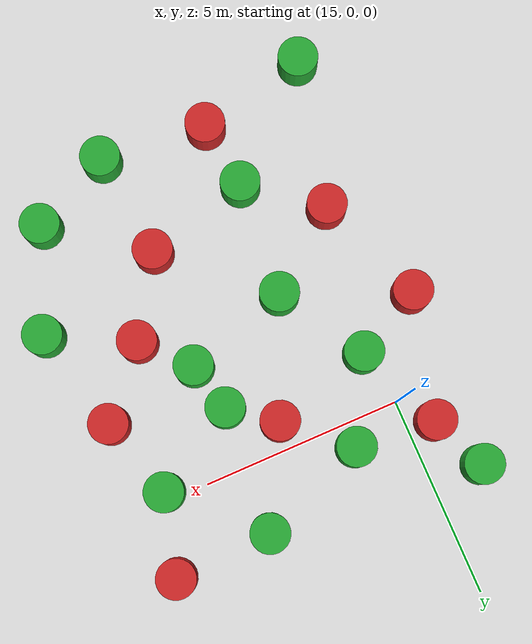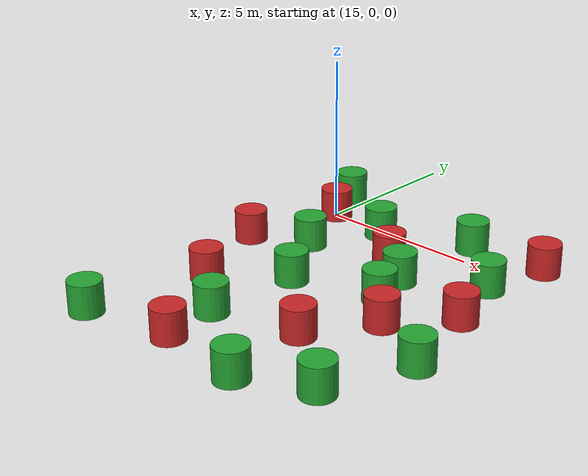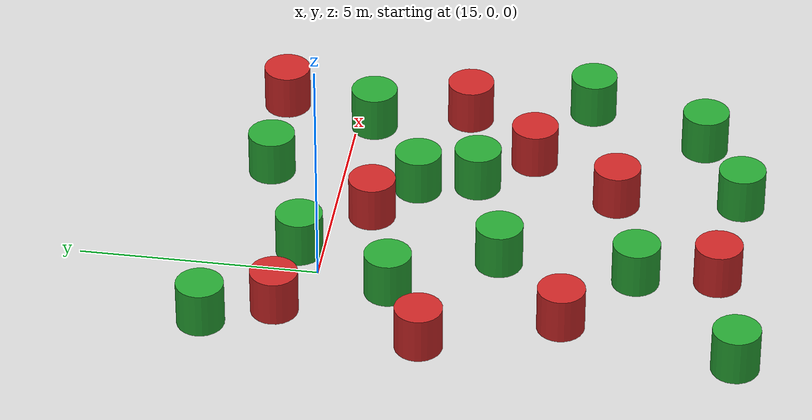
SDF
<sdf version="1.7">
 <model name="Astar_Dij_test.world">
  <link name="link_0_clone_2">
   <inertial>
    <mass>20</mass>
    <inertia><ixx>2.91667</ixx><ixy>0</ixy><ixz>0</ixz><iyy>2.91667</iyy><iyz>0</iyz><izz>2.5</izz></inertia>
   </inertial>
   <pose>13.5266 -2.31251 0 0 -0 0</pose>
   <visual name="visual">
    <geometry><cylinder><radius>0.5</radius><length>1</length></cylinder></geometry>
    <material>
     <lighting>1</lighting>
     <script><uri>file://media/materials/scripts/gazebo.material</uri><name>Gazebo/Red</name></script>
     <shader type="pixel"><normal_map>__default__</normal_map></shader>
     <ambient>1 0 0 1</ambient>
     <diffuse>1 0 0 1</diffuse>
     <specular>0.1 0.1 0.1 1</specular>
     <emissive>0 0 0 1</emissive>
    </material>
   </visual>
   <collision name="collision">
    <geometry><cylinder><radius>0.5</radius><length>1</length></cylinder></geometry>
    <surface>
     <friction>
      <ode><mu>1</mu><mu2>1</mu2><fdir1>0 0 0</fdir1><slip1>0</slip1><slip2>0</slip2></ode>
      <torsional>
       <coefficient>1</coefficient>
       <patch_radius>0</patch_radius>
       <surface_radius>0</surface_radius>
       <use_patch_radius>1</use_patch_radius>
       <ode><slip>0</slip></ode>
      </torsional>
     </friction>
     <bounce><restitution_coefficient>0</restitution_coefficient><threshold>1e+06</threshold></bounce>
     <contact>
      <collide_without_contact>0</collide_without_contact>
      <collide_without_contact_bitmask>1</collide_without_contact_bitmask>
      <collide_bitmask>1</collide_bitmask>
      <ode>
       <soft_cfm>0</soft_cfm>
       <soft_erp>0.2</soft_erp>
       <kp>1e+13</kp>
       <kd>1</kd>
       <max_vel>0.01</max_vel>
       <min_depth>0</min_depth>
      </ode>
      <bullet>
       <split_impulse>1</split_impulse>
       <split_impulse_penetration_threshold>-0.01</split_impulse_penetration_threshold>
       <soft_cfm>0</soft_cfm>
       <soft_erp>0.2</soft_erp>
       <kp>1e+13</kp>
       <kd>1</kd>
      </bullet>
     </contact>
    </surface>
   </collision>
  </link>
  <link name="link_0_clone_25">
   <inertial>
    <mass>20</mass>
    <inertia><ixx>2.91667</ixx><ixy>0</ixy><ixz>0</ixz><iyy>2.91667</iyy><iyz>0</iyz><izz>2.5</izz></inertia>
   </inertial>
   <pose>18.9473 -5.77924 0 0 -0 0</pose>
   <visual name="visual">
    <geometry><cylinder><radius>0.5</radius><length>1</length></cylinder></geometry>
    <material>
     <lighting>1</lighting>
     <script><uri>file://media/materials/scripts/gazebo.material</uri><name>Gazebo/Red</name></script>
     <shader type="pixel"><normal_map>__default__</normal_map></shader>
     <ambient>1 0 0 1</ambient>
     <diffuse>1 0 0 1</diffuse>
     <specular>0.1 0.1 0.1 1</specular>
     <emissive>0 0 0 1</emissive>
    </material>
   </visual>
   <collision name="collision">
    <geometry><cylinder><radius>0.5</radius><length>1</length></cylinder></geometry>
    <surface>
     <friction>
      <ode><mu>1</mu><mu2>1</mu2><fdir1>0 0 0</fdir1><slip1>0</slip1><slip2>0</slip2></ode>
      <torsional>
       <coefficient>1</coefficient>
       <patch_radius>0</patch_radius>
       <surface_radius>0</surface_radius>
       <use_patch_radius>1</use_patch_radius>
       <ode><slip>0</slip></ode>
      </torsional>
     </friction>
     <bounce><restitution_coefficient>0</restitution_coefficient><threshold>1e+06</threshold></bounce>
     <contact>
      <collide_without_contact>0</collide_without_contact>
      <collide_without_contact_bitmask>1</collide_without_contact_bitmask>
      <collide_bitmask>1</collide_bitmask>
      <ode>
       <soft_cfm>0</soft_cfm>
       <soft_erp>0.2</soft_erp>
       <kp>1e+13</kp>
       <kd>1</kd>
       <max_vel>0.01</max_vel>
       <min_depth>0</min_depth>
      </ode>
      <bullet>
       <split_impulse>1</split_impulse>
       <split_impulse_penetration_threshold>-0.01</split_impulse_penetration_threshold>
       <soft_cfm>0</soft_cfm>
       <soft_erp>0.2</soft_erp>
       <kp>1e+13</kp>
       <kd>1</kd>
      </bullet>
     </contact>
    </surface>
   </collision>
  </link>
  <link name="link_0_clone_25_clone">
   <inertial>
    <mass>20</mass>
    <inertia><ixx>2.91667</ixx><ixy>0</ixy><ixz>0</ixz><iyy>2.91667</iyy><iyz>0</iyz><izz>2.5</izz></inertia>
   </inertial>
   <pose>20.1782 -3.87581 0 0 -0 0</pose>
   <visual name="visual">
    <geometry><cylinder><radius>0.5</radius><length>1</length></cylinder></geometry>
    <material>
     <lighting>1</lighting>
     <script><uri>file://media/materials/scripts/gazebo.material</uri><name>Gazebo/Red</name></script>
     <shader type="pixel"><normal_map>__default__</normal_map></shader>
     <ambient>1 0 0 1</ambient>
     <diffuse>1 0 0 1</diffuse>
     <specular>0.1 0.1 0.1 1</specular>
     <emissive>0 0 0 1</emissive>
    </material>
   </visual>
   <collision name="collision">
    <geometry><cylinder><radius>0.5</radius><length>1</length></cylinder></geometry>
    <surface>
     <friction>
      <ode><mu>1</mu><mu2>1</mu2><fdir1>0 0 0</fdir1><slip1>0</slip1><slip2>0</slip2></ode>
      <torsional>
       <coefficient>1</coefficient>
       <patch_radius>0</patch_radius>
       <surface_radius>0</surface_radius>
       <use_patch_radius>1</use_patch_radius>
       <ode><slip>0</slip></ode>
      </torsional>
     </friction>
     <bounce><restitution_coefficient>0</restitution_coefficient><threshold>1e+06</threshold></bounce>
     <contact>
      <collide_without_contact>0</collide_without_contact>
      <collide_without_contact_bitmask>1</collide_without_contact_bitmask>
      <collide_bitmask>1</collide_bitmask>
      <ode>
       <soft_cfm>0</soft_cfm>
       <soft_erp>0.2</soft_erp>
       <kp>1e+13</kp>
       <kd>1</kd>
       <max_vel>0.01</max_vel>
       <min_depth>0</min_depth>
      </ode>
      <bullet>
       <split_impulse>1</split_impulse>
       <split_impulse_penetration_threshold>-0.01</split_impulse_penetration_threshold>
       <soft_cfm>0</soft_cfm>
       <soft_erp>0.2</soft_erp>
       <kp>1e+13</kp>
       <kd>1</kd>
      </bullet>
     </contact>
    </surface>
   </collision>
  </link>
  <link name="link_0_clone_25_clone_0">
   <inertial>
    <mass>20</mass>
    <inertia><ixx>2.91667</ixx><ixy>0</ixy><ixz>0</ixz><iyy>2.91667</iyy><iyz>0</iyz><izz>2.5</izz></inertia>
   </inertial>
   <pose>17.7704 -0.699835 0 0 -0 0</pose>
   <visual name="visual">
    <geometry><cylinder><radius>0.5</radius><length>1</length></cylinder></geometry>
    <material>
     <lighting>1</lighting>
     <script><uri>file://media/materials/scripts/gazebo.material</uri><name>Gazebo/Red</name></script>
     <shader type="pixel"><normal_map>__default__</normal_map></shader>
     <ambient>1 0 0 1</ambient>
     <diffuse>1 0 0 1</diffuse>
     <specular>0.1 0.1 0.1 1</specular>
     <emissive>0 0 0 1</emissive>
    </material>
   </visual>
   <collision name="collision">
    <geometry><cylinder><radius>0.5</radius><length>1</length></cylinder></geometry>
    <surface>
     <friction>
      <ode><mu>1</mu><mu2>1</mu2><fdir1>0 0 0</fdir1><slip1>0</slip1><slip2>0</slip2></ode>
      <torsional>
       <coefficient>1</coefficient>
       <patch_radius>0</patch_radius>
       <surface_radius>0</surface_radius>
       <use_patch_radius>1</use_patch_radius>
       <ode><slip>0</slip></ode>
      </torsional>
     </friction>
     <bounce><restitution_coefficient>0</restitution_coefficient><threshold>1e+06</threshold></bounce>
     <contact>
      <collide_without_contact>0</collide_without_contact>
      <collide_without_contact_bitmask>1</collide_without_contact_bitmask>
      <collide_bitmask>1</collide_bitmask>
      <ode>
       <soft_cfm>0</soft_cfm>
       <soft_erp>0.2</soft_erp>
       <kp>1e+13</kp>
       <kd>1</kd>
       <max_vel>0.01</max_vel>
       <min_depth>0</min_depth>
      </ode>
      <bullet>
       <split_impulse>1</split_impulse>
       <split_impulse_penetration_threshold>-0.01</split_impulse_penetration_threshold>
       <soft_cfm>0</soft_cfm>
       <soft_erp>0.2</soft_erp>
       <kp>1e+13</kp>
       <kd>1</kd>
      </bullet>
     </contact>
    </surface>
   </collision>
  </link>
  <link name="link_0_clone_25_clone_1">
   <inertial>
    <mass>20</mass>
    <inertia><ixx>2.91667</ixx><ixy>0</ixy><ixz>0</ixz><iyy>2.91667</iyy><iyz>0</iyz><izz>2.5</izz></inertia>
   </inertial>
   <pose>21.603 -2.29267 0 0 -0 0</pose>
   <visual name="visual">
    <geometry><cylinder><radius>0.5</radius><length>1</length></cylinder></geometry>
    <material>
     <lighting>1</lighting>
     <script><uri>file://media/materials/scripts/gazebo.material</uri><name>Gazebo/Red</name></script>
     <shader type="pixel"><normal_map>__default__</normal_map></shader>
     <ambient>1 0 0 1</ambient>
     <diffuse>1 0 0 1</diffuse>
     <specular>0.1 0.1 0.1 1</specular>
     <emissive>0 0 0 1</emissive>
    </material>
   </visual>
   <collision name="collision">
    <geometry><cylinder><radius>0.5</radius><length>1</length></cylinder></geometry>
    <surface>
     <friction>
      <ode><mu>1</mu><mu2>1</mu2><fdir1>0 0 0</fdir1><slip1>0</slip1><slip2>0</slip2></ode>
      <torsional>
       <coefficient>1</coefficient>
       <patch_radius>0</patch_radius>
       <surface_radius>0</surface_radius>
       <use_patch_radius>1</use_patch_radius>
       <ode><slip>0</slip></ode>
      </torsional>
     </friction>
     <bounce><restitution_coefficient>0</restitution_coefficient><threshold>1e+06</threshold></bounce>
     <contact>
      <collide_without_contact>0</collide_without_contact>
      <collide_without_contact_bitmask>1</collide_without_contact_bitmask>
      <collide_bitmask>1</collide_bitmask>
      <ode>
       <soft_cfm>0</soft_cfm>
       <soft_erp>0.2</soft_erp>
       <kp>1e+13</kp>
       <kd>1</kd>
       <max_vel>0.01</max_vel>
       <min_depth>0</min_depth>
      </ode>
      <bullet>
       <split_impulse>1</split_impulse>
       <split_impulse_penetration_threshold>-0.01</split_impulse_penetration_threshold>
       <soft_cfm>0</soft_cfm>
       <soft_erp>0.2</soft_erp>
       <kp>1e+13</kp>
       <kd>1</kd>
      </bullet>
     </contact>
    </surface>
   </collision>
  </link>
  <link name="link_0_clone_25_clone_2">
   <inertial>
    <mass>20</mass>
    <inertia><ixx>2.91667</ixx><ixy>0</ixy><ixz>0</ixz><iyy>2.91667</iyy><iyz>0</iyz><izz>2.5</izz></inertia>
   </inertial>
   <pose>21.5702 1.76746 0 0 -0 0</pose>
   <visual name="visual">
    <geometry><cylinder><radius>0.5</radius><length>1</length></cylinder></geometry>
    <material>
     <lighting>1</lighting>
     <script><uri>file://media/materials/scripts/gazebo.material</uri><name>Gazebo/Red</name></script>
     <shader type="pixel"><normal_map>__default__</normal_map></shader>
     <ambient>1 0 0 1</ambient>
     <diffuse>1 0 0 1</diffuse>
     <specular>0.1 0.1 0.1 1</specular>
     <emissive>0 0 0 1</emissive>
    </material>
   </visual>
   <collision name="collision">
    <geometry><cylinder><radius>0.5</radius><length>1</length></cylinder></geometry>
    <surface>
     <friction>
      <ode><mu>1</mu><mu2>1</mu2><fdir1>0 0 0</fdir1><slip1>0</slip1><slip2>0</slip2></ode>
      <torsional>
       <coefficient>1</coefficient>
       <patch_radius>0</patch_radius>
       <surface_radius>0</surface_radius>
       <use_patch_radius>1</use_patch_radius>
       <ode><slip>0</slip></ode>
      </torsional>
     </friction>
     <bounce><restitution_coefficient>0</restitution_coefficient><threshold>1e+06</threshold></bounce>
     <contact>
      <collide_without_contact>0</collide_without_contact>
      <collide_without_contact_bitmask>1</collide_without_contact_bitmask>
      <collide_bitmask>1</collide_bitmask>
      <ode>
       <soft_cfm>0</soft_cfm>
       <soft_erp>0.2</soft_erp>
       <kp>1e+13</kp>
       <kd>1</kd>
       <max_vel>0.01</max_vel>
       <min_depth>0</min_depth>
      </ode>
      <bullet>
       <split_impulse>1</split_impulse>
       <split_impulse_penetration_threshold>-0.01</split_impulse_penetration_threshold>
       <soft_cfm>0</soft_cfm>
       <soft_erp>0.2</soft_erp>
       <kp>1e+13</kp>
       <kd>1</kd>
      </bullet>
     </contact>
    </surface>
   </collision>
  </link>
  <link name="link_0_clone_3">
   <inertial>
    <mass>20</mass>
    <inertia><ixx>2.91667</ixx><ixy>0</ixy><ixz>0</ixz><iyy>2.91667</iyy><iyz>0</iyz><izz>2.5</izz></inertia>
   </inertial>
   <pose>14.2917 0.794786 0 0 -0 0</pose>
   <visual name="visual">
    <geometry><cylinder><radius>0.5</radius><length>1</length></cylinder></geometry>
    <material>
     <lighting>1</lighting>
     <script><uri>file://media/materials/scripts/gazebo.material</uri><name>Gazebo/Red</name></script>
     <shader type="pixel"><normal_map>__default__</normal_map></shader>
     <ambient>1 0 0 1</ambient>
     <diffuse>1 0 0 1</diffuse>
     <specular>0.1 0.1 0.1 1</specular>
     <emissive>0 0 0 1</emissive>
    </material>
   </visual>
   <collision name="collision">
    <geometry><cylinder><radius>0.5</radius><length>1</length></cylinder></geometry>
    <surface>
     <friction>
      <ode><mu>1</mu><mu2>1</mu2><fdir1>0 0 0</fdir1><slip1>0</slip1><slip2>0</slip2></ode>
      <torsional>
       <coefficient>1</coefficient>
       <patch_radius>0</patch_radius>
       <surface_radius>0</surface_radius>
       <use_patch_radius>1</use_patch_radius>
       <ode><slip>0</slip></ode>
      </torsional>
     </friction>
     <bounce><restitution_coefficient>0</restitution_coefficient><threshold>1e+06</threshold></bounce>
     <contact>
      <collide_without_contact>0</collide_without_contact>
      <collide_without_contact_bitmask>1</collide_without_contact_bitmask>
      <collide_bitmask>1</collide_bitmask>
      <ode>
       <soft_cfm>0</soft_cfm>
       <soft_erp>0.2</soft_erp>
       <kp>1e+13</kp>
       <kd>1</kd>
       <max_vel>0.01</max_vel>
       <min_depth>0</min_depth>
      </ode>
      <bullet>
       <split_impulse>1</split_impulse>
       <split_impulse_penetration_threshold>-0.01</split_impulse_penetration_threshold>
       <soft_cfm>0</soft_cfm>
       <soft_erp>0.2</soft_erp>
       <kp>1e+13</kp>
       <kd>1</kd>
      </bullet>
     </contact>
    </surface>
   </collision>
  </link>
  <link name="link_0_clone_8">
   <inertial>
    <mass>20</mass>
    <inertia><ixx>2.91667</ixx><ixy>0</ixy><ixz>0</ixz><iyy>2.91667</iyy><iyz>0</iyz><izz>2.5</izz></inertia>
   </inertial>
   <pose>16.5267 -8.14797 0 0 -0 0</pose>
   <visual name="visual">
    <geometry><cylinder><radius>0.5</radius><length>1</length></cylinder></geometry>
    <material>
     <lighting>1</lighting>
     <script><uri>file://media/materials/scripts/gazebo.material</uri><name>Gazebo/Red</name></script>
     <shader type="pixel"><normal_map>__default__</normal_map></shader>
     <ambient>1 0 0 1</ambient>
     <diffuse>1 0 0 1</diffuse>
     <specular>0.1 0.1 0.1 1</specular>
     <emissive>0 0 0 1</emissive>
    </material>
   </visual>
   <collision name="collision">
    <geometry><cylinder><radius>0.5</radius><length>1</length></cylinder></geometry>
    <surface>
     <friction>
      <ode><mu>1</mu><mu2>1</mu2><fdir1>0 0 0</fdir1><slip1>0</slip1><slip2>0</slip2></ode>
      <torsional>
       <coefficient>1</coefficient>
       <patch_radius>0</patch_radius>
       <surface_radius>0</surface_radius>
       <use_patch_radius>1</use_patch_radius>
       <ode><slip>0</slip></ode>
      </torsional>
     </friction>
     <bounce><restitution_coefficient>0</restitution_coefficient><threshold>1e+06</threshold></bounce>
     <contact>
      <collide_without_contact>0</collide_without_contact>
      <collide_without_contact_bitmask>1</collide_without_contact_bitmask>
      <collide_bitmask>1</collide_bitmask>
      <ode>
       <soft_cfm>0</soft_cfm>
       <soft_erp>0.2</soft_erp>
       <kp>1e+13</kp>
       <kd>1</kd>
       <max_vel>0.01</max_vel>
       <min_depth>0</min_depth>
      </ode>
      <bullet>
       <split_impulse>1</split_impulse>
       <split_impulse_penetration_threshold>-0.01</split_impulse_penetration_threshold>
       <soft_cfm>0</soft_cfm>
       <soft_erp>0.2</soft_erp>
       <kp>1e+13</kp>
       <kd>1</kd>
      </bullet>
     </contact>
    </surface>
   </collision>
  </link>
  <link name="link_0_clone_9">
   <inertial>
    <mass>20</mass>
    <inertia><ixx>2.91667</ixx><ixy>0</ixy><ixz>0</ixz><iyy>2.91667</iyy><iyz>0</iyz><izz>2.5</izz></inertia>
   </inertial>
   <pose>14.588 -5.0993 0 0 -0 0</pose>
   <visual name="visual">
    <geometry><cylinder><radius>0.5</radius><length>1</length></cylinder></geometry>
    <material>
     <lighting>1</lighting>
     <script><uri>file://media/materials/scripts/gazebo.material</uri><name>Gazebo/Red</name></script>
     <shader type="pixel"><normal_map>__default__</normal_map></shader>
     <ambient>1 0 0 1</ambient>
     <diffuse>1 0 0 1</diffuse>
     <specular>0.1 0.1 0.1 1</specular>
     <emissive>0 0 0 1</emissive>
    </material>
   </visual>
   <collision name="collision">
    <geometry><cylinder><radius>0.5</radius><length>1</length></cylinder></geometry>
    <surface>
     <friction>
      <ode><mu>1</mu><mu2>1</mu2><fdir1>0 0 0</fdir1><slip1>0</slip1><slip2>0</slip2></ode>
      <torsional>
       <coefficient>1</coefficient>
       <patch_radius>0</patch_radius>
       <surface_radius>0</surface_radius>
       <use_patch_radius>1</use_patch_radius>
       <ode><slip>0</slip></ode>
      </torsional>
     </friction>
     <bounce><restitution_coefficient>0</restitution_coefficient><threshold>1e+06</threshold></bounce>
     <contact>
      <collide_without_contact>0</collide_without_contact>
      <collide_without_contact_bitmask>1</collide_without_contact_bitmask>
      <collide_bitmask>1</collide_bitmask>
      <ode>
       <soft_cfm>0</soft_cfm>
       <soft_erp>0.2</soft_erp>
       <kp>1e+13</kp>
       <kd>1</kd>
       <max_vel>0.01</max_vel>
       <min_depth>0</min_depth>
      </ode>
      <bullet>
       <split_impulse>1</split_impulse>
       <split_impulse_penetration_threshold>-0.01</split_impulse_penetration_threshold>
       <soft_cfm>0</soft_cfm>
       <soft_erp>0.2</soft_erp>
       <kp>1e+13</kp>
       <kd>1</kd>
      </bullet>
     </contact>
    </surface>
   </collision>
  </link>
  <link name="link_clone_6">
   <inertial>
    <mass>20</mass>
    <inertia><ixx>2.91667</ixx><ixy>0</ixy><ixz>0</ixz><iyy>2.91667</iyy><iyz>0</iyz><izz>2.5</izz></inertia>
   </inertial>
   <pose>21.0244 -0.249196 0 0 -0 0</pose>
   <visual name="visual">
    <geometry><cylinder><radius>0.5</radius><length>1</length></cylinder></geometry>
    <material>
     <script><name>Gazebo/Green</name><uri>file://media/materials/scripts/gazebo.material</uri></script>
     <shader type="pixel"><normal_map>__default__</normal_map></shader>
     <ambient>0 1 0 1</ambient>
     <diffuse>0 1 0 1</diffuse>
     <specular>0.1 0.1 0.1 1</specular>
     <emissive>0 0 0 1</emissive>
    </material>
   </visual>
   <collision name="collision">
    <geometry><cylinder><radius>0.5</radius><length>1</length></cylinder></geometry>
    <surface>
     <friction>
      <ode><mu>1</mu><mu2>1</mu2><fdir1>0 0 0</fdir1><slip1>0</slip1><slip2>0</slip2></ode>
      <torsional>
       <coefficient>1</coefficient>
       <patch_radius>0</patch_radius>
       <surface_radius>0</surface_radius>
       <use_patch_radius>1</use_patch_radius>
       <ode><slip>0</slip></ode>
      </torsional>
     </friction>
     <bounce><restitution_coefficient>0</restitution_coefficient><threshold>1e+06</threshold></bounce>
     <contact>
      <collide_without_contact>0</collide_without_contact>
      <collide_without_contact_bitmask>1</collide_without_contact_bitmask>
      <collide_bitmask>1</collide_bitmask>
      <ode>
       <soft_cfm>0</soft_cfm>
       <soft_erp>0.2</soft_erp>
       <kp>1e+13</kp>
       <kd>1</kd>
       <max_vel>0.01</max_vel>
       <min_depth>0</min_depth>
      </ode>
      <bullet>
       <split_impulse>1</split_impulse>
       <split_impulse_penetration_threshold>-0.01</split_impulse_penetration_threshold>
       <soft_cfm>0</soft_cfm>
       <soft_erp>0.2</soft_erp>
       <kp>1e+13</kp>
       <kd>1</kd>
      </bullet>
     </contact>
    </surface>
   </collision>
  </link>
  <link name="link_clone_6_clone">
   <inertial>
    <mass>20</mass>
    <inertia><ixx>2.91667</ixx><ixy>0</ixy><ixz>0</ixz><iyy>2.91667</iyy><iyz>0</iyz><izz>2.5</izz></inertia>
   </inertial>
   <pose>19.1575 -2.77241 0 0 -0 0</pose>
   <visual name="visual">
    <geometry><cylinder><radius>0.5</radius><length>1</length></cylinder></geometry>
    <material>
     <script><name>Gazebo/Green</name><uri>file://media/materials/scripts/gazebo.material</uri></script>
     <shader type="pixel"><normal_map>__default__</normal_map></shader>
     <ambient>0 1 0 1</ambient>
     <diffuse>0 1 0 1</diffuse>
     <specular>0.1 0.1 0.1 1</specular>
     <emissive>0 0 0 1</emissive>
    </material>
   </visual>
   <collision name="collision">
    <geometry><cylinder><radius>0.5</radius><length>1</length></cylinder></geometry>
    <surface>
     <friction>
      <ode><mu>1</mu><mu2>1</mu2><fdir1>0 0 0</fdir1><slip1>0</slip1><slip2>0</slip2></ode>
      <torsional>
       <coefficient>1</coefficient>
       <patch_radius>0</patch_radius>
       <surface_radius>0</surface_radius>
       <use_patch_radius>1</use_patch_radius>
       <ode><slip>0</slip></ode>
      </torsional>
     </friction>
     <bounce><restitution_coefficient>0</restitution_coefficient><threshold>1e+06</threshold></bounce>
     <contact>
      <collide_without_contact>0</collide_without_contact>
      <collide_without_contact_bitmask>1</collide_without_contact_bitmask>
      <collide_bitmask>1</collide_bitmask>
      <ode>
       <soft_cfm>0</soft_cfm>
       <soft_erp>0.2</soft_erp>
       <kp>1e+13</kp>
       <kd>1</kd>
       <max_vel>0.01</max_vel>
       <min_depth>0</min_depth>
      </ode>
      <bullet>
       <split_impulse>1</split_impulse>
       <split_impulse_penetration_threshold>-0.01</split_impulse_penetration_threshold>
       <soft_cfm>0</soft_cfm>
       <soft_erp>0.2</soft_erp>
       <kp>1e+13</kp>
       <kd>1</kd>
      </bullet>
     </contact>
    </surface>
   </collision>
  </link>
  <link name="link_clone_6_clone_0">
   <inertial>
    <mass>20</mass>
    <inertia><ixx>2.91667</ixx><ixy>0</ixy><ixz>0</ixz><iyy>2.91667</iyy><iyz>0</iyz><izz>2.5</izz></inertia>
   </inertial>
   <pose>18.8594 -1.53089 0 0 -0 0</pose>
   <visual name="visual">
    <geometry><cylinder><radius>0.5</radius><length>1</length></cylinder></geometry>
    <material>
     <script><name>Gazebo/Green</name><uri>file://media/materials/scripts/gazebo.material</uri></script>
     <shader type="pixel"><normal_map>__default__</normal_map></shader>
     <ambient>0 1 0 1</ambient>
     <diffuse>0 1 0 1</diffuse>
     <specular>0.1 0.1 0.1 1</specular>
     <emissive>0 0 0 1</emissive>
    </material>
   </visual>
   <collision name="collision">
    <geometry><cylinder><radius>0.5</radius><length>1</length></cylinder></geometry>
    <surface>
     <friction>
      <ode><mu>1</mu><mu2>1</mu2><fdir1>0 0 0</fdir1><slip1>0</slip1><slip2>0</slip2></ode>
      <torsional>
       <coefficient>1</coefficient>
       <patch_radius>0</patch_radius>
       <surface_radius>0</surface_radius>
       <use_patch_radius>1</use_patch_radius>
       <ode><slip>0</slip></ode>
      </torsional>
     </friction>
     <bounce><restitution_coefficient>0</restitution_coefficient><threshold>1e+06</threshold></bounce>
     <contact>
      <collide_without_contact>0</collide_without_contact>
      <collide_without_contact_bitmask>1</collide_without_contact_bitmask>
      <collide_bitmask>1</collide_bitmask>
      <ode>
       <soft_cfm>0</soft_cfm>
       <soft_erp>0.2</soft_erp>
       <kp>1e+13</kp>
       <kd>1</kd>
       <max_vel>0.01</max_vel>
       <min_depth>0</min_depth>
      </ode>
      <bullet>
       <split_impulse>1</split_impulse>
       <split_impulse_penetration_threshold>-0.01</split_impulse_penetration_threshold>
       <soft_cfm>0</soft_cfm>
       <soft_erp>0.2</soft_erp>
       <kp>1e+13</kp>
       <kd>1</kd>
      </bullet>
     </contact>
    </surface>
   </collision>
  </link>
  <link name="link_clone_7">
   <inertial>
    <mass>20</mass>
    <inertia><ixx>2.91667</ixx><ixy>0</ixy><ixz>0</ixz><iyy>2.91667</iyy><iyz>0</iyz><izz>2.5</izz></inertia>
   </inertial>
   <pose>21.2238 -7.46023 0 0 -0 0</pose>
   <visual name="visual">
    <geometry><cylinder><radius>0.5</radius><length>1</length></cylinder></geometry>
    <material>
     <script><name>Gazebo/Green</name><uri>file://media/materials/scripts/gazebo.material</uri></script>
     <shader type="pixel"><normal_map>__default__</normal_map></shader>
     <ambient>0 1 0 1</ambient>
     <diffuse>0 1 0 1</diffuse>
     <specular>0.1 0.1 0.1 1</specular>
     <emissive>0 0 0 1</emissive>
    </material>
   </visual>
   <collision name="collision">
    <geometry><cylinder><radius>0.5</radius><length>1</length></cylinder></geometry>
    <surface>
     <friction>
      <ode><mu>1</mu><mu2>1</mu2><fdir1>0 0 0</fdir1><slip1>0</slip1><slip2>0</slip2></ode>
      <torsional>
       <coefficient>1</coefficient>
       <patch_radius>0</patch_radius>
       <surface_radius>0</surface_radius>
       <use_patch_radius>1</use_patch_radius>
       <ode><slip>0</slip></ode>
      </torsional>
     </friction>
     <bounce><restitution_coefficient>0</restitution_coefficient><threshold>1e+06</threshold></bounce>
     <contact>
      <collide_without_contact>0</collide_without_contact>
      <collide_without_contact_bitmask>1</collide_without_contact_bitmask>
      <collide_bitmask>1</collide_bitmask>
      <ode>
       <soft_cfm>0</soft_cfm>
       <soft_erp>0.2</soft_erp>
       <kp>1e+13</kp>
       <kd>1</kd>
       <max_vel>0.01</max_vel>
       <min_depth>0</min_depth>
      </ode>
      <bullet>
       <split_impulse>1</split_impulse>
       <split_impulse_penetration_threshold>-0.01</split_impulse_penetration_threshold>
       <soft_cfm>0</soft_cfm>
       <soft_erp>0.2</soft_erp>
       <kp>1e+13</kp>
       <kd>1</kd>
      </bullet>
     </contact>
    </surface>
   </collision>
  </link>
  <link name="link_clone_8">
   <inertial>
    <mass>20</mass>
    <inertia><ixx>2.91667</ixx><ixy>0</ixy><ixz>0</ixz><iyy>2.91667</iyy><iyz>0</iyz><izz>2.5</izz></inertia>
   </inertial>
   <pose>16.5309 -3.57455 0 0 -0 0</pose>
   <visual name="visual">
    <geometry><cylinder><radius>0.5</radius><length>1</length></cylinder></geometry>
    <material>
     <script><name>Gazebo/Green</name><uri>file://media/materials/scripts/gazebo.material</uri></script>
     <shader type="pixel"><normal_map>__default__</normal_map></shader>
     <ambient>0 1 0 1</ambient>
     <diffuse>0 1 0 1</diffuse>
     <specular>0.1 0.1 0.1 1</specular>
     <emissive>0 0 0 1</emissive>
    </material>
   </visual>
   <collision name="collision">
    <geometry><cylinder><radius>0.5</radius><length>1</length></cylinder></geometry>
    <surface>
     <friction>
      <ode><mu>1</mu><mu2>1</mu2><fdir1>0 0 0</fdir1><slip1>0</slip1><slip2>0</slip2></ode>
      <torsional>
       <coefficient>1</coefficient>
       <patch_radius>0</patch_radius>
       <surface_radius>0</surface_radius>
       <use_patch_radius>1</use_patch_radius>
       <ode><slip>0</slip></ode>
      </torsional>
     </friction>
     <bounce><restitution_coefficient>0</restitution_coefficient><threshold>1e+06</threshold></bounce>
     <contact>
      <collide_without_contact>0</collide_without_contact>
      <collide_without_contact_bitmask>1</collide_without_contact_bitmask>
      <collide_bitmask>1</collide_bitmask>
      <ode>
       <soft_cfm>0</soft_cfm>
       <soft_erp>0.2</soft_erp>
       <kp>1e+13</kp>
       <kd>1</kd>
       <max_vel>0.01</max_vel>
       <min_depth>0</min_depth>
      </ode>
      <bullet>
       <split_impulse>1</split_impulse>
       <split_impulse_penetration_threshold>-0.01</split_impulse_penetration_threshold>
       <soft_cfm>0</soft_cfm>
       <soft_erp>0.2</soft_erp>
       <kp>1e+13</kp>
       <kd>1</kd>
      </bullet>
     </contact>
    </surface>
   </collision>
  </link>
  <link name="link_clone_9">
   <inertial>
    <mass>20</mass>
    <inertia><ixx>2.91667</ixx><ixy>0</ixy><ixz>0</ixz><iyy>2.91667</iyy><iyz>0</iyz><izz>2.5</izz></inertia>
   </inertial>
   <pose>16.3314 0.615667 0 0 -0 0</pose>
   <visual name="visual">
    <geometry><cylinder><radius>0.5</radius><length>1</length></cylinder></geometry>
    <material>
     <script><name>Gazebo/Green</name><uri>file://media/materials/scripts/gazebo.material</uri></script>
     <shader type="pixel"><normal_map>__default__</normal_map></shader>
     <ambient>0 1 0 1</ambient>
     <diffuse>0 1 0 1</diffuse>
     <specular>0.1 0.1 0.1 1</specular>
     <emissive>0 0 0 1</emissive>
    </material>
   </visual>
   <collision name="collision">
    <geometry><cylinder><radius>0.5</radius><length>1</length></cylinder></geometry>
    <surface>
     <friction>
      <ode><mu>1</mu><mu2>1</mu2><fdir1>0 0 0</fdir1><slip1>0</slip1><slip2>0</slip2></ode>
      <torsional>
       <coefficient>1</coefficient>
       <patch_radius>0</patch_radius>
       <surface_radius>0</surface_radius>
       <use_patch_radius>1</use_patch_radius>
       <ode><slip>0</slip></ode>
      </torsional>
     </friction>
     <bounce><restitution_coefficient>0</restitution_coefficient><threshold>1e+06</threshold></bounce>
     <contact>
      <collide_without_contact>0</collide_without_contact>
      <collide_without_contact_bitmask>1</collide_without_contact_bitmask>
      <collide_bitmask>1</collide_bitmask>
      <ode>
       <soft_cfm>0</soft_cfm>
       <soft_erp>0.2</soft_erp>
       <kp>1e+13</kp>
       <kd>1</kd>
       <max_vel>0.01</max_vel>
       <min_depth>0</min_depth>
      </ode>
      <bullet>
       <split_impulse>1</split_impulse>
       <split_impulse_penetration_threshold>-0.01</split_impulse_penetration_threshold>
       <soft_cfm>0</soft_cfm>
       <soft_erp>0.2</soft_erp>
       <kp>1e+13</kp>
       <kd>1</kd>
      </bullet>
     </contact>
    </surface>
   </collision>
  </link>
  <link name="link_clone_9_clone_0">
   <inertial>
    <mass>20</mass>
    <inertia><ixx>2.91667</ixx><ixy>0</ixy><ixz>0</ixz><iyy>2.91667</iyy><iyz>0</iyz><izz>2.5</izz></inertia>
   </inertial>
   <pose>15.229 -1.42425 0 0 -0 0</pose>
   <visual name="visual">
    <geometry><cylinder><radius>0.5</radius><length>1</length></cylinder></geometry>
    <material>
     <script><name>Gazebo/Green</name><uri>file://media/materials/scripts/gazebo.material</uri></script>
     <shader type="pixel"><normal_map>__default__</normal_map></shader>
     <ambient>0 1 0 1</ambient>
     <diffuse>0 1 0 1</diffuse>
     <specular>0.1 0.1 0.1 1</specular>
     <emissive>0 0 0 1</emissive>
    </material>
   </visual>
   <collision name="collision">
    <geometry><cylinder><radius>0.5</radius><length>1</length></cylinder></geometry>
    <surface>
     <friction>
      <ode><mu>1</mu><mu2>1</mu2><fdir1>0 0 0</fdir1><slip1>0</slip1><slip2>0</slip2></ode>
      <torsional>
       <coefficient>1</coefficient>
       <patch_radius>0</patch_radius>
       <surface_radius>0</surface_radius>
       <use_patch_radius>1</use_patch_radius>
       <ode><slip>0</slip></ode>
      </torsional>
     </friction>
     <bounce><restitution_coefficient>0</restitution_coefficient><threshold>1e+06</threshold></bounce>
     <contact>
      <collide_without_contact>0</collide_without_contact>
      <collide_without_contact_bitmask>1</collide_without_contact_bitmask>
      <collide_bitmask>1</collide_bitmask>
      <ode>
       <soft_cfm>0</soft_cfm>
       <soft_erp>0.2</soft_erp>
       <kp>1e+13</kp>
       <kd>1</kd>
       <max_vel>0.01</max_vel>
       <min_depth>0</min_depth>
      </ode>
      <bullet>
       <split_impulse>1</split_impulse>
       <split_impulse_penetration_threshold>-0.01</split_impulse_penetration_threshold>
       <soft_cfm>0</soft_cfm>
       <soft_erp>0.2</soft_erp>
       <kp>1e+13</kp>
       <kd>1</kd>
      </bullet>
     </contact>
    </surface>
   </collision>
  </link>
  <link name="link_clone_9_clone_1">
   <inertial>
    <mass>20</mass>
    <inertia><ixx>2.91667</ixx><ixy>0</ixy><ixz>0</ixz><iyy>2.91667</iyy><iyz>0</iyz><izz>2.5</izz></inertia>
   </inertial>
   <pose>13.683 2.22302 0 0 -0 0</pose>
   <visual name="visual">
    <geometry><cylinder><radius>0.5</radius><length>1</length></cylinder></geometry>
    <material>
     <script><name>Gazebo/Green</name><uri>file://media/materials/scripts/gazebo.material</uri></script>
     <shader type="pixel"><normal_map>__default__</normal_map></shader>
     <ambient>0 1 0 1</ambient>
     <diffuse>0 1 0 1</diffuse>
     <specular>0.1 0.1 0.1 1</specular>
     <emissive>0 0 0 1</emissive>
    </material>
   </visual>
   <collision name="collision">
    <geometry><cylinder><radius>0.5</radius><length>1</length></cylinder></geometry>
    <surface>
     <friction>
      <ode><mu>1</mu><mu2>1</mu2><fdir1>0 0 0</fdir1><slip1>0</slip1><slip2>0</slip2></ode>
      <torsional>
       <coefficient>1</coefficient>
       <patch_radius>0</patch_radius>
       <surface_radius>0</surface_radius>
       <use_patch_radius>1</use_patch_radius>
       <ode><slip>0</slip></ode>
      </torsional>
     </friction>
     <bounce><restitution_coefficient>0</restitution_coefficient><threshold>1e+06</threshold></bounce>
     <contact>
      <collide_without_contact>0</collide_without_contact>
      <collide_without_contact_bitmask>1</collide_without_contact_bitmask>
      <collide_bitmask>1</collide_bitmask>
      <ode>
       <soft_cfm>0</soft_cfm>
       <soft_erp>0.2</soft_erp>
       <kp>1e+13</kp>
       <kd>1</kd>
       <max_vel>0.01</max_vel>
       <min_depth>0</min_depth>
      </ode>
      <bullet>
       <split_impulse>1</split_impulse>
       <split_impulse_penetration_threshold>-0.01</split_impulse_penetration_threshold>
       <soft_cfm>0</soft_cfm>
       <soft_erp>0.2</soft_erp>
       <kp>1e+13</kp>
       <kd>1</kd>
      </bullet>
     </contact>
    </surface>
   </collision>
  </link>
  <link name="link_clone_9_clone_2">
   <inertial>
    <mass>20</mass>
    <inertia><ixx>2.91667</ixx><ixy>0</ixy><ixz>0</ixz><iyy>2.91667</iyy><iyz>0</iyz><izz>2.5</izz></inertia>
   </inertial>
   <pose>19.0754 1.67943 0 0 -0 0</pose>
   <visual name="visual">
    <geometry><cylinder><radius>0.5</radius><length>1</length></cylinder></geometry>
    <material>
     <script><name>Gazebo/Green</name><uri>file://media/materials/scripts/gazebo.material</uri></script>
     <shader type="pixel"><normal_map>__default__</normal_map></shader>
     <ambient>0 1 0 1</ambient>
     <diffuse>0 1 0 1</diffuse>
     <specular>0.1 0.1 0.1 1</specular>
     <emissive>0 0 0 1</emissive>
    </material>
   </visual>
   <collision name="collision">
    <geometry><cylinder><radius>0.5</radius><length>1</length></cylinder></geometry>
    <surface>
     <friction>
      <ode><mu>1</mu><mu2>1</mu2><fdir1>0 0 0</fdir1><slip1>0</slip1><slip2>0</slip2></ode>
      <torsional>
       <coefficient>1</coefficient>
       <patch_radius>0</patch_radius>
       <surface_radius>0</surface_radius>
       <use_patch_radius>1</use_patch_radius>
       <ode><slip>0</slip></ode>
      </torsional>
     </friction>
     <bounce><restitution_coefficient>0</restitution_coefficient><threshold>1e+06</threshold></bounce>
     <contact>
      <collide_without_contact>0</collide_without_contact>
      <collide_without_contact_bitmask>1</collide_without_contact_bitmask>
      <collide_bitmask>1</collide_bitmask>
      <ode>
       <soft_cfm>0</soft_cfm>
       <soft_erp>0.2</soft_erp>
       <kp>1e+13</kp>
       <kd>1</kd>
       <max_vel>0.01</max_vel>
       <min_depth>0</min_depth>
      </ode>
      <bullet>
       <split_impulse>1</split_impulse>
       <split_impulse_penetration_threshold>-0.01</split_impulse_penetration_threshold>
       <soft_cfm>0</soft_cfm>
       <soft_erp>0.2</soft_erp>
       <kp>1e+13</kp>
       <kd>1</kd>
      </bullet>
     </contact>
    </surface>
   </collision>
  </link>
  <link name="link_clone_9_clone_3">
   <inertial>
    <mass>20</mass>
    <inertia><ixx>2.91667</ixx><ixy>0</ixy><ixz>0</ixz><iyy>2.91667</iyy><iyz>0</iyz><izz>2.5</izz></inertia>
   </inertial>
   <pose>13.7631 -8.74526 0 0 -0 0</pose>
   <visual name="visual">
    <geometry><cylinder><radius>0.5</radius><length>1</length></cylinder></geometry>
    <material>
     <script><name>Gazebo/Green</name><uri>file://media/materials/scripts/gazebo.material</uri></script>
     <shader type="pixel"><normal_map>__default__</normal_map></shader>
     <ambient>0 1 0 1</ambient>
     <diffuse>0 1 0 1</diffuse>
     <specular>0.1 0.1 0.1 1</specular>
     <emissive>0 0 0 1</emissive>
    </material>
   </visual>
   <collision name="collision">
    <geometry><cylinder><radius>0.5</radius><length>1</length></cylinder></geometry>
    <surface>
     <friction>
      <ode><mu>1</mu><mu2>1</mu2><fdir1>0 0 0</fdir1><slip1>0</slip1><slip2>0</slip2></ode>
      <torsional>
       <coefficient>1</coefficient>
       <patch_radius>0</patch_radius>
       <surface_radius>0</surface_radius>
       <use_patch_radius>1</use_patch_radius>
       <ode><slip>0</slip></ode>
      </torsional>
     </friction>
     <bounce><restitution_coefficient>0</restitution_coefficient><threshold>1e+06</threshold></bounce>
     <contact>
      <collide_without_contact>0</collide_without_contact>
      <collide_without_contact_bitmask>1</collide_without_contact_bitmask>
      <collide_bitmask>1</collide_bitmask>
      <ode>
       <soft_cfm>0</soft_cfm>
       <soft_erp>0.2</soft_erp>
       <kp>1e+13</kp>
       <kd>1</kd>
       <max_vel>0.01</max_vel>
       <min_depth>0</min_depth>
      </ode>
      <bullet>
       <split_impulse>1</split_impulse>
       <split_impulse_penetration_threshold>-0.01</split_impulse_penetration_threshold>
       <soft_cfm>0</soft_cfm>
       <soft_erp>0.2</soft_erp>
       <kp>1e+13</kp>
       <kd>1</kd>
      </bullet>
     </contact>
    </surface>
   </collision>
  </link>
  <link name="link_clone_9_clone_4">
   <inertial>
    <mass>20</mass>
    <inertia><ixx>2.91667</ixx><ixy>0</ixy><ixz>0</ixz><iyy>2.91667</iyy><iyz>0</iyz><izz>2.5</izz></inertia>
   </inertial>
   <pose>19.2191 -8.41034 0 0 -0 0</pose>
   <visual name="visual">
    <geometry><cylinder><radius>0.5</radius><length>1</length></cylinder></geometry>
    <material>
     <script><name>Gazebo/Green</name><uri>file://media/materials/scripts/gazebo.material</uri></script>
     <shader type="pixel"><normal_map>__default__</normal_map></shader>
     <ambient>0 1 0 1</ambient>
     <diffuse>0 1 0 1</diffuse>
     <specular>0.1 0.1 0.1 1</specular>
     <emissive>0 0 0 1</emissive>
    </material>
   </visual>
   <collision name="collision">
    <geometry><cylinder><radius>0.5</radius><length>1</length></cylinder></geometry>
    <surface>
     <friction>
      <ode><mu>1</mu><mu2>1</mu2><fdir1>0 0 0</fdir1><slip1>0</slip1><slip2>0</slip2></ode>
      <torsional>
       <coefficient>1</coefficient>
       <patch_radius>0</patch_radius>
       <surface_radius>0</surface_radius>
       <use_patch_radius>1</use_patch_radius>
       <ode><slip>0</slip></ode>
      </torsional>
     </friction>
     <bounce><restitution_coefficient>0</restitution_coefficient><threshold>1e+06</threshold></bounce>
     <contact>
      <collide_without_contact>0</collide_without_contact>
      <collide_without_contact_bitmask>1</collide_without_contact_bitmask>
      <collide_bitmask>1</collide_bitmask>
      <ode>
       <soft_cfm>0</soft_cfm>
       <soft_erp>0.2</soft_erp>
       <kp>1e+13</kp>
       <kd>1</kd>
       <max_vel>0.01</max_vel>
       <min_depth>0</min_depth>
      </ode>
      <bullet>
       <split_impulse>1</split_impulse>
       <split_impulse_penetration_threshold>-0.01</split_impulse_penetration_threshold>
       <soft_cfm>0</soft_cfm>
       <soft_erp>0.2</soft_erp>
       <kp>1e+13</kp>
       <kd>1</kd>
      </bullet>
     </contact>
    </surface>
   </collision>
  </link>
  <link name="link_clone_9_clone_5">
   <inertial>
    <mass>20</mass>
    <inertia><ixx>2.91667</ixx><ixy>0</ixy><ixz>0</ixz><iyy>2.91667</iyy><iyz>0</iyz><izz>2.5</izz></inertia>
   </inertial>
   <pose>16.3185 -6.46108 0 0 -0 0</pose>
   <visual name="visual">
    <geometry><cylinder><radius>0.5</radius><length>1</length></cylinder></geometry>
    <material>
     <script><name>Gazebo/Green</name><uri>file://media/materials/scripts/gazebo.material</uri></script>
     <shader type="pixel"><normal_map>__default__</normal_map></shader>
     <ambient>0 1 0 1</ambient>
     <diffuse>0 1 0 1</diffuse>
     <specular>0.1 0.1 0.1 1</specular>
     <emissive>0 0 0 1</emissive>
    </material>
   </visual>
   <collision name="collision">
    <geometry><cylinder><radius>0.5</radius><length>1</length></cylinder></geometry>
    <surface>
     <friction>
      <ode><mu>1</mu><mu2>1</mu2><fdir1>0 0 0</fdir1><slip1>0</slip1><slip2>0</slip2></ode>
      <torsional>
       <coefficient>1</coefficient>
       <patch_radius>0</patch_radius>
       <surface_radius>0</surface_radius>
       <use_patch_radius>1</use_patch_radius>
       <ode><slip>0</slip></ode>
      </torsional>
     </friction>
     <bounce><restitution_coefficient>0</restitution_coefficient><threshold>1e+06</threshold></bounce>
     <contact>
      <collide_without_contact>0</collide_without_contact>
      <collide_without_contact_bitmask>1</collide_without_contact_bitmask>
      <collide_bitmask>1</collide_bitmask>
      <ode>
       <soft_cfm>0</soft_cfm>
       <soft_erp>0.2</soft_erp>
       <kp>1e+13</kp>
       <kd>1</kd>
       <max_vel>0.01</max_vel>
       <min_depth>0</min_depth>
      </ode>
      <bullet>
       <split_impulse>1</split_impulse>
       <split_impulse_penetration_threshold>-0.01</split_impulse_penetration_threshold>
       <soft_cfm>0</soft_cfm>
       <soft_erp>0.2</soft_erp>
       <kp>1e+13</kp>
       <kd>1</kd>
      </bullet>
     </contact>
    </surface>
   </collision>
  </link>
  <link name="link_clone_9_clone_7">
   <inertial>
    <mass>20</mass>
    <inertia><ixx>2.91667</ixx><ixy>0</ixy><ixz>0</ixz><iyy>2.91667</iyy><iyz>0</iyz><izz>2.5</izz></inertia>
   </inertial>
   <pose>22.2234 -4.92367 0 0 -0 0</pose>
   <visual name="visual">
    <geometry><cylinder><radius>0.5</radius><length>1</length></cylinder></geometry>
    <material>
     <script><name>Gazebo/Green</name><uri>file://media/materials/scripts/gazebo.material</uri></script>
     <shader type="pixel"><normal_map>__default__</normal_map></shader>
     <ambient>0 1 0 1</ambient>
     <diffuse>0 1 0 1</diffuse>
     <specular>0.1 0.1 0.1 1</specular>
     <emissive>0 0 0 1</emissive>
    </material>
   </visual>
   <collision name="collision">
    <geometry><cylinder><radius>0.5</radius><length>1</length></cylinder></geometry>
    <surface>
     <friction>
      <ode><mu>1</mu><mu2>1</mu2><fdir1>0 0 0</fdir1><slip1>0</slip1><slip2>0</slip2></ode>
      <torsional>
       <coefficient>1</coefficient>
       <patch_radius>0</patch_radius>
       <surface_radius>0</surface_radius>
       <use_patch_radius>1</use_patch_radius>
       <ode><slip>0</slip></ode>
      </torsional>
     </friction>
     <bounce><restitution_coefficient>0</restitution_coefficient><threshold>1e+06</threshold></bounce>
     <contact>
      <collide_without_contact>0</collide_without_contact>
      <collide_without_contact_bitmask>1</collide_without_contact_bitmask>
      <collide_bitmask>1</collide_bitmask>
      <ode>
       <soft_cfm>0</soft_cfm>
       <soft_erp>0.2</soft_erp>
       <kp>1e+13</kp>
       <kd>1</kd>
       <max_vel>0.01</max_vel>
       <min_depth>0</min_depth>
      </ode>
      <bullet>
       <split_impulse>1</split_impulse>
       <split_impulse_penetration_threshold>-0.01</split_impulse_penetration_threshold>
       <soft_cfm>0</soft_cfm>
       <soft_erp>0.2</soft_erp>
       <kp>1e+13</kp>
       <kd>1</kd>
      </bullet>
     </contact>
    </surface>
   </collision>
  </link>
  <static>0</static>
 </model>
</sdf>
